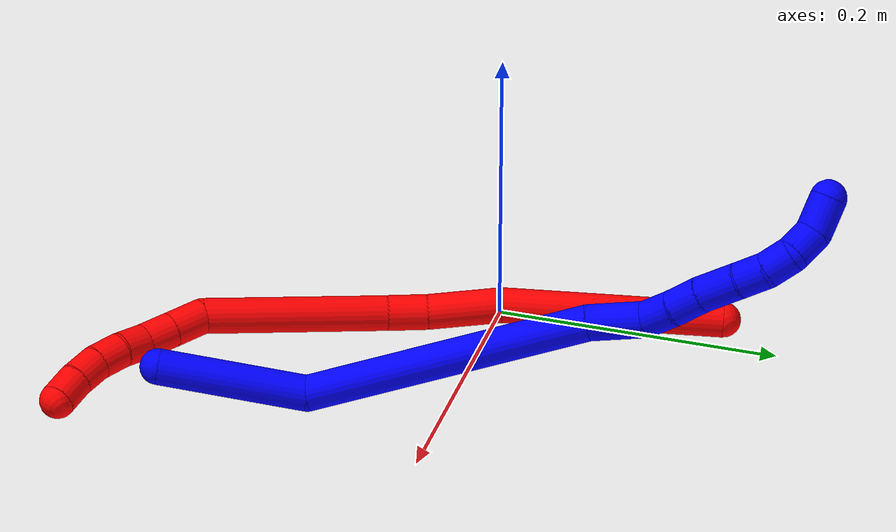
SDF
<sdf version="1.7">
 <world name="default">
  <plugin name="TubeGeneratorPlugin" filename="libtube_generator_plugin.so"/>
  <model name="photoneo_s_sensor">
   <static>1</static>
   <pose>0 0 2 1.57079 1.57079 3.14159</pose>
   <link name="link">
    <inertial><mass>0.1</mass></inertial>
    <sensor name="sensor" type="depth">
     <update_rate>30</update_rate>
     <camera>
      <horizontal_fov>1.22</horizontal_fov>
      <image><width>1920</width><height>1200</height><format>B8G8R8</format></image>
      <clip><near>0.1</near><far>4</far></clip>
      <depth_camera><output>points</output></depth_camera>
     </camera>
     <plugin name="camera_plugin" filename="libgazebo_ros_depth_camera.so">
      <baseline>0.2</baseline>
      <alwaysOn>1</alwaysOn>
      <updateRate>0.0</updateRate>
      <cameraName>camera_ir</cameraName>
      <imageTopicName>/camera/color/image_raw</imageTopicName>
      <cameraInfoTopicName>/camera/color/camera_info</cameraInfoTopicName>
      <depthImageTopicName>/camera/depth/image_raw</depthImageTopicName>
      <depthImageCameraInfoTopicName>/camera/depth/camera_info</depthImageCameraInfoTopicName>
      <pointCloudTopicName>/camera/depth/points</pointCloudTopicName>
      <frameName>fr_optical</frameName>
      <pointCloudCutoff>0.1</pointCloudCutoff>
      <pointCloudCutoffMax>2.0</pointCloudCutoffMax>
      <distortionK1>0</distortionK1>
      <distortionK2>0</distortionK2>
      <distortionK3>0</distortionK3>
      <distortionT1>0</distortionT1>
      <distortionT2>0</distortionT2>
      <CxPrime>0</CxPrime>
      <Cx>0</Cx>
      <Cy>0</Cy>
      <focalLength>0</focalLength>
      <hackBaseline>0</hackBaseline>
     </plugin>
    </sensor>
   </link>
  </model>
  <gravity>0 0 -9.8</gravity>
  <magnetic_field>6e-06 2.3e-05 -4.2e-05</magnetic_field>
  <atmosphere type="adiabatic"/>
  <physics name="default_physics" default="0" type="ode">
   <max_step_size>0.003</max_step_size>
   <real_time_factor>1</real_time_factor>
   <real_time_update_rate>1000</real_time_update_rate>
   <max_contacts>10000</max_contacts>
   <ode>
    <solver>
     <type>quick</type>
     <iters>100</iters>
     <sor>1.3</sor>
     <use_dynamic_moi_rescaling>0</use_dynamic_moi_rescaling>
    </solver>
    <constraints>
     <contact_max_correcting_vel>0</contact_max_correcting_vel>
     <contact_surface_layer>0.001</contact_surface_layer>
     <cfm>0</cfm>
     <erp>0.2</erp>
    </constraints>
   </ode>
  </physics>
  <scene><ambient>0.4 0.4 0.4 1</ambient><background>0.7 0.7 0.7 1</background><shadows>0</shadows></scene>
  <audio><device>default</device></audio>
  <spherical_coordinates>
   <surface_model>EARTH_WGS84</surface_model>
   <latitude_deg>0</latitude_deg>
   <longitude_deg>0</longitude_deg>
   <elevation>0</elevation>
   <heading_deg>0</heading_deg>
  </spherical_coordinates>
  <model name="bin">
   <static>1</static>
   <link name="bottom">
    <collision name="collision-bottom">
     <pose>0 0 -0.01 0 -0 0</pose>
     <geometry><box><size>0.8 0.6 0.02</size></box></geometry>
     <surface>
      <friction><ode><mu>100</mu><mu2>100</mu2></ode></friction>
      <contact><collide_bitmask>65535</collide_bitmask></contact>
     </surface>
    </collision>
   </link>
   <link name="west_wall">
    <collision name="collision-west_wall">
     <pose>-0.41 0 0.1 0 -0 0</pose>
     <geometry><box><size>0.02 0.6 0.2</size></box></geometry>
     <surface>
      <friction><ode><mu>100</mu><mu2>100</mu2></ode></friction>
      <contact><collide_bitmask>65535</collide_bitmask></contact>
     </surface>
    </collision>
   </link>
   <link name="east_wall">
    <collision name="collision-east_wall">
     <pose>0.41 0 0.1 0 -0 0</pose>
     <geometry><box><size>0.02 0.6 0.2</size></box></geometry>
     <surface>
      <friction><ode><mu>100</mu><mu2>100</mu2></ode></friction>
      <contact><collide_bitmask>65535</collide_bitmask></contact>
     </surface>
    </collision>
   </link>
   <link name="south_wall">
    <collision name="collision-south_wall">
     <pose>0 -0.31 0.1 0 -0 0</pose>
     <geometry><box><size>0.8 0.02 0.2</size></box></geometry>
     <surface>
      <friction><ode><mu>100</mu><mu2>100</mu2></ode></friction>
      <contact><collide_bitmask>65535</collide_bitmask></contact>
     </surface>
    </collision>
   </link>
   <link name="north_wall">
    <collision name="collision-north_wall">
     <pose>0 0.31 0.1 0 -0 0</pose>
     <geometry><box><size>0.8 0.02 0.2</size></box></geometry>
     <surface>
      <friction><ode><mu>100</mu><mu2>100</mu2></ode></friction>
      <contact><collide_bitmask>65535</collide_bitmask></contact>
     </surface>
    </collision>
   </link>
  </model>
  <model name="1">
   <static>0</static>
   <link name="1">
    <collision name="collision-cylinder-e_1_1_4">
     <pose>-0.004828 0.044765 -0.025045 -2.08088 -0.09385 0.159823</pose>
     <geometry><cylinder><radius>0.0125</radius><length>0.103044</length></cylinder></geometry>
     <surface>
      <friction><ode><mu>1.16</mu><mu2>1.16</mu2><slip1>0</slip1><slip2>0</slip2></ode></friction>
      <contact><ode><kp>1e+06</kp><kd>1</kd><max_vel>0</max_vel><min_depth>0.001</min_depth></ode></contact>
     </surface>
    </collision>
    <visual name="visual-cylinder-e_1_1_4">
     <pose>-0.004828 0.044765 -0.025045 -2.08088 -0.09385 0.159823</pose>
     <geometry><cylinder><radius>0.0125</radius><length>0.103044</length></cylinder></geometry>
     <material><ambient>0 0 1 1</ambient></material>
    </visual>
    <collision name="collision-cylinder-e_2_4_5">
     <pose>-0.063218 0.161538 -0.09321 -2.11035 -0.568013 0.951193</pose>
     <geometry><cylinder><radius>0.0125</radius><length>0.19913</length></cylinder></geometry>
     <surface>
      <friction><ode><mu>1.16</mu><mu2>1.16</mu2><slip1>0</slip1><slip2>0</slip2></ode></friction>
      <contact><ode><kp>1e+06</kp><kd>1</kd><max_vel>0</max_vel><min_depth>0.001</min_depth></ode></contact>
     </surface>
    </collision>
    <visual name="visual-cylinder-e_2_4_5">
     <pose>-0.063218 0.161538 -0.09321 -2.11035 -0.568013 0.951193</pose>
     <geometry><cylinder><radius>0.0125</radius><length>0.19913</length></cylinder></geometry>
     <material><ambient>0 0 1 1</ambient></material>
    </visual>
    <collision name="collision-cylinder-e_3_5_6">
     <pose>-0.124976 0.249985 -0.14276 -1.94367 -0.434636 0.625696</pose>
     <geometry><cylinder><radius>0.0125</radius><length>0.038925</length></cylinder></geometry>
     <surface>
      <friction><ode><mu>1.16</mu><mu2>1.16</mu2><slip1>0</slip1><slip2>0</slip2></ode></friction>
      <contact><ode><kp>1e+06</kp><kd>1</kd><max_vel>0</max_vel><min_depth>0.001</min_depth></ode></contact>
     </surface>
    </collision>
    <visual name="visual-cylinder-e_3_5_6">
     <pose>-0.124976 0.249985 -0.14276 -1.94367 -0.434636 0.625696</pose>
     <geometry><cylinder><radius>0.0125</radius><length>0.038925</length></cylinder></geometry>
     <material><ambient>0 0 1 1</ambient></material>
    </visual>
    <collision name="collision-cylinder-e_4_6_7">
     <pose>-0.141386 0.273877 -0.150658 -1.76511 -0.824639 0.977619</pose>
     <geometry><cylinder><radius>0.0125</radius><length>0.022376</length></cylinder></geometry>
     <surface>
      <friction><ode><mu>1.16</mu><mu2>1.16</mu2><slip1>0</slip1><slip2>0</slip2></ode></friction>
      <contact><ode><kp>1e+06</kp><kd>1</kd><max_vel>0</max_vel><min_depth>0.001</min_depth></ode></contact>
     </surface>
    </collision>
    <visual name="visual-cylinder-e_4_6_7">
     <pose>-0.141386 0.273877 -0.150658 -1.76511 -0.824639 0.977619</pose>
     <geometry><cylinder><radius>0.0125</radius><length>0.022376</length></cylinder></geometry>
     <material><ambient>0 0 1 1</ambient></material>
    </visual>
    <collision name="collision-cylinder-e_5_7_8">
     <pose>-0.158127 0.288229 -0.154554 -1.90936 -0.861588 1.15145</pose>
     <geometry><cylinder><radius>0.0125</radius><length>0.022466</length></cylinder></geometry>
     <surface>
      <friction><ode><mu>1.16</mu><mu2>1.16</mu2><slip1>0</slip1><slip2>0</slip2></ode></friction>
      <contact><ode><kp>1e+06</kp><kd>1</kd><max_vel>0</max_vel><min_depth>0.001</min_depth></ode></contact>
     </surface>
    </collision>
    <visual name="visual-cylinder-e_5_7_8">
     <pose>-0.158127 0.288229 -0.154554 -1.90936 -0.861588 1.15145</pose>
     <geometry><cylinder><radius>0.0125</radius><length>0.022466</length></cylinder></geometry>
     <material><ambient>0 0 1 1</ambient></material>
    </visual>
    <collision name="collision-cylinder-e_6_8_9">
     <pose>-0.176571 0.304849 -0.159758 -1.84883 -0.776005 0.992904</pose>
     <geometry><cylinder><radius>0.0125</radius><length>0.028325</length></cylinder></geometry>
     <surface>
      <friction><ode><mu>1.16</mu><mu2>1.16</mu2><slip1>0</slip1><slip2>0</slip2></ode></friction>
      <contact><ode><kp>1e+06</kp><kd>1</kd><max_vel>0</max_vel><min_depth>0.001</min_depth></ode></contact>
     </surface>
    </collision>
    <visual name="visual-cylinder-e_6_8_9">
     <pose>-0.176571 0.304849 -0.159758 -1.84883 -0.776005 0.992904</pose>
     <geometry><cylinder><radius>0.0125</radius><length>0.028325</length></cylinder></geometry>
     <material><ambient>0 0 1 1</ambient></material>
    </visual>
    <collision name="collision-cylinder-e_7_9_10">
     <pose>-0.193282 0.321353 -0.165545 -1.98875 -0.740953 1.07715</pose>
     <geometry><cylinder><radius>0.0125</radius><length>0.020124</length></cylinder></geometry>
     <surface>
      <friction><ode><mu>1.16</mu><mu2>1.16</mu2><slip1>0</slip1><slip2>0</slip2></ode></friction>
      <contact><ode><kp>1e+06</kp><kd>1</kd><max_vel>0</max_vel><min_depth>0.001</min_depth></ode></contact>
     </surface>
    </collision>
    <visual name="visual-cylinder-e_7_9_10">
     <pose>-0.193282 0.321353 -0.165545 -1.98875 -0.740953 1.07715</pose>
     <geometry><cylinder><radius>0.0125</radius><length>0.020124</length></cylinder></geometry>
     <material><ambient>0 0 1 1</ambient></material>
    </visual>
    <collision name="collision-cylinder-e_8_10_11">
     <pose>-0.207741 0.333152 -0.172713 -2.26272 -0.866695 1.5549</pose>
     <geometry><cylinder><radius>0.0125</radius><length>0.020118</length></cylinder></geometry>
     <surface>
      <friction><ode><mu>1.16</mu><mu2>1.16</mu2><slip1>0</slip1><slip2>0</slip2></ode></friction>
      <contact><ode><kp>1e+06</kp><kd>1</kd><max_vel>0</max_vel><min_depth>0.001</min_depth></ode></contact>
     </surface>
    </collision>
    <visual name="visual-cylinder-e_8_10_11">
     <pose>-0.207741 0.333152 -0.172713 -2.26272 -0.866695 1.5549</pose>
     <geometry><cylinder><radius>0.0125</radius><length>0.020118</length></cylinder></geometry>
     <material><ambient>0 0 1 1</ambient></material>
    </visual>
    <collision name="collision-cylinder-e_9_11_12">
     <pose>-0.221915 0.339899 -0.18449 -2.9181 -0.694236 2.54004</pose>
     <geometry><cylinder><radius>0.0125</radius><length>0.020341</length></cylinder></geometry>
     <surface>
      <friction><ode><mu>1.16</mu><mu2>1.16</mu2><slip1>0</slip1><slip2>0</slip2></ode></friction>
      <contact><ode><kp>1e+06</kp><kd>1</kd><max_vel>0</max_vel><min_depth>0.001</min_depth></ode></contact>
     </surface>
    </collision>
    <visual name="visual-cylinder-e_9_11_12">
     <pose>-0.221915 0.339899 -0.18449 -2.9181 -0.694236 2.54004</pose>
     <geometry><cylinder><radius>0.0125</radius><length>0.020341</length></cylinder></geometry>
     <material><ambient>0 0 1 1</ambient></material>
    </visual>
    <collision name="collision-cylinder-e_10_12_2">
     <pose>-0.239054 0.340181 -0.198669 2.92389 -1.00749 -2.75013</pose>
     <geometry><cylinder><radius>0.0125</radius><length>0.025151</length></cylinder></geometry>
     <surface>
      <friction><ode><mu>1.16</mu><mu2>1.16</mu2><slip1>0</slip1><slip2>0</slip2></ode></friction>
      <contact><ode><kp>1e+06</kp><kd>1</kd><max_vel>0</max_vel><min_depth>0.001</min_depth></ode></contact>
     </surface>
    </collision>
    <visual name="visual-cylinder-e_10_12_2">
     <pose>-0.239054 0.340181 -0.198669 2.92389 -1.00749 -2.75013</pose>
     <geometry><cylinder><radius>0.0125</radius><length>0.025151</length></cylinder></geometry>
     <material><ambient>0 0 1 1</ambient></material>
    </visual>
    <collision name="collision-sphere-2">
     <pose>-0.249687 0.338731 -0.205225 0 -0 0</pose>
     <geometry><sphere><radius>0.0125</radius></sphere></geometry>
     <surface>
      <friction><ode><mu>1.16</mu><mu2>1.16</mu2><slip1>0</slip1><slip2>0</slip2></ode></friction>
      <contact><ode><kp>1e+06</kp><kd>1</kd><max_vel>0</max_vel><min_depth>0.001</min_depth></ode></contact>
     </surface>
    </collision>
    <visual name="visual-sphere-2">
     <pose>-0.249687 0.338731 -0.205225 0 -0 0</pose>
     <geometry><sphere><radius>0.0125</radius></sphere></geometry>
     <material><ambient>0 0 1 1</ambient></material>
    </visual>
    <collision name="collision-sphere-12">
     <pose>-0.228422 0.341631 -0.192112 0 -0 0</pose>
     <geometry><sphere><radius>0.0125</radius></sphere></geometry>
     <surface>
      <friction><ode><mu>1.16</mu><mu2>1.16</mu2><slip1>0</slip1><slip2>0</slip2></ode></friction>
      <contact><ode><kp>1e+06</kp><kd>1</kd><max_vel>0</max_vel><min_depth>0.001</min_depth></ode></contact>
     </surface>
    </collision>
    <visual name="visual-sphere-12">
     <pose>-0.228422 0.341631 -0.192112 0 -0 0</pose>
     <geometry><sphere><radius>0.0125</radius></sphere></geometry>
     <material><ambient>0 0 1 1</ambient></material>
    </visual>
    <collision name="collision-sphere-11">
     <pose>-0.215408 0.338166 -0.176868 0 -0 0</pose>
     <geometry><sphere><radius>0.0125</radius></sphere></geometry>
     <surface>
      <friction><ode><mu>1.16</mu><mu2>1.16</mu2><slip1>0</slip1><slip2>0</slip2></ode></friction>
      <contact><ode><kp>1e+06</kp><kd>1</kd><max_vel>0</max_vel><min_depth>0.001</min_depth></ode></contact>
     </surface>
    </collision>
    <visual name="visual-sphere-11">
     <pose>-0.215408 0.338166 -0.176868 0 -0 0</pose>
     <geometry><sphere><radius>0.0125</radius></sphere></geometry>
     <material><ambient>0 0 1 1</ambient></material>
    </visual>
    <collision name="collision-sphere-10">
     <pose>-0.200074 0.328138 -0.168559 0 -0 0</pose>
     <geometry><sphere><radius>0.0125</radius></sphere></geometry>
     <surface>
      <friction><ode><mu>1.16</mu><mu2>1.16</mu2><slip1>0</slip1><slip2>0</slip2></ode></friction>
      <contact><ode><kp>1e+06</kp><kd>1</kd><max_vel>0</max_vel><min_depth>0.001</min_depth></ode></contact>
     </surface>
    </collision>
    <visual name="visual-sphere-10">
     <pose>-0.200074 0.328138 -0.168559 0 -0 0</pose>
     <geometry><sphere><radius>0.0125</radius></sphere></geometry>
     <material><ambient>0 0 1 1</ambient></material>
    </visual>
    <collision name="collision-sphere-9">
     <pose>-0.186491 0.314569 -0.162532 0 -0 0</pose>
     <geometry><sphere><radius>0.0125</radius></sphere></geometry>
     <surface>
      <friction><ode><mu>1.16</mu><mu2>1.16</mu2><slip1>0</slip1><slip2>0</slip2></ode></friction>
      <contact><ode><kp>1e+06</kp><kd>1</kd><max_vel>0</max_vel><min_depth>0.001</min_depth></ode></contact>
     </surface>
    </collision>
    <visual name="visual-sphere-9">
     <pose>-0.186491 0.314569 -0.162532 0 -0 0</pose>
     <geometry><sphere><radius>0.0125</radius></sphere></geometry>
     <material><ambient>0 0 1 1</ambient></material>
    </visual>
    <collision name="collision-sphere-4">
     <pose>-0.009656 0.089531 -0.05009 0 -0 0</pose>
     <geometry><sphere><radius>0.0125</radius></sphere></geometry>
     <surface>
      <friction><ode><mu>1.16</mu><mu2>1.16</mu2><slip1>0</slip1><slip2>0</slip2></ode></friction>
      <contact><ode><kp>1e+06</kp><kd>1</kd><max_vel>0</max_vel><min_depth>0.001</min_depth></ode></contact>
     </surface>
    </collision>
    <visual name="visual-sphere-4">
     <pose>-0.009656 0.089531 -0.05009 0 -0 0</pose>
     <geometry><sphere><radius>0.0125</radius></sphere></geometry>
     <material><ambient>0 0 1 1</ambient></material>
    </visual>
    <collision name="collision-sphere-1">
     <geometry><sphere><radius>0.0125</radius></sphere></geometry>
     <surface>
      <friction><ode><mu>1.16</mu><mu2>1.16</mu2><slip1>0</slip1><slip2>0</slip2></ode></friction>
      <contact><ode><kp>1e+06</kp><kd>1</kd><max_vel>0</max_vel><min_depth>0.001</min_depth></ode></contact>
     </surface>
    </collision>
    <visual name="visual-sphere-1">
     <geometry><sphere><radius>0.0125</radius></sphere></geometry>
     <material><ambient>0 0 1 1</ambient></material>
    </visual>
    <collision name="collision-sphere-8">
     <pose>-0.166651 0.295129 -0.156984 0 -0 0</pose>
     <geometry><sphere><radius>0.0125</radius></sphere></geometry>
     <surface>
      <friction><ode><mu>1.16</mu><mu2>1.16</mu2><slip1>0</slip1><slip2>0</slip2></ode></friction>
      <contact><ode><kp>1e+06</kp><kd>1</kd><max_vel>0</max_vel><min_depth>0.001</min_depth></ode></contact>
     </surface>
    </collision>
    <visual name="visual-sphere-8">
     <pose>-0.166651 0.295129 -0.156984 0 -0 0</pose>
     <geometry><sphere><radius>0.0125</radius></sphere></geometry>
     <material><ambient>0 0 1 1</ambient></material>
    </visual>
    <collision name="collision-sphere-5">
     <pose>-0.11678 0.233545 -0.136329 0 -0 0</pose>
     <geometry><sphere><radius>0.0125</radius></sphere></geometry>
     <surface>
      <friction><ode><mu>1.16</mu><mu2>1.16</mu2><slip1>0</slip1><slip2>0</slip2></ode></friction>
      <contact><ode><kp>1e+06</kp><kd>1</kd><max_vel>0</max_vel><min_depth>0.001</min_depth></ode></contact>
     </surface>
    </collision>
    <visual name="visual-sphere-5">
     <pose>-0.11678 0.233545 -0.136329 0 -0 0</pose>
     <geometry><sphere><radius>0.0125</radius></sphere></geometry>
     <material><ambient>0 0 1 1</ambient></material>
    </visual>
    <collision name="collision-sphere-6">
     <pose>-0.133171 0.266425 -0.149191 0 -0 0</pose>
     <geometry><sphere><radius>0.0125</radius></sphere></geometry>
     <surface>
      <friction><ode><mu>1.16</mu><mu2>1.16</mu2><slip1>0</slip1><slip2>0</slip2></ode></friction>
      <contact><ode><kp>1e+06</kp><kd>1</kd><max_vel>0</max_vel><min_depth>0.001</min_depth></ode></contact>
     </surface>
    </collision>
    <visual name="visual-sphere-6">
     <pose>-0.133171 0.266425 -0.149191 0 -0 0</pose>
     <geometry><sphere><radius>0.0125</radius></sphere></geometry>
     <material><ambient>0 0 1 1</ambient></material>
    </visual>
    <collision name="collision-sphere-7">
     <pose>-0.149602 0.281329 -0.152124 0 -0 0</pose>
     <geometry><sphere><radius>0.0125</radius></sphere></geometry>
     <surface>
      <friction><ode><mu>1.16</mu><mu2>1.16</mu2><slip1>0</slip1><slip2>0</slip2></ode></friction>
      <contact><ode><kp>1e+06</kp><kd>1</kd><max_vel>0</max_vel><min_depth>0.001</min_depth></ode></contact>
     </surface>
    </collision>
    <visual name="visual-sphere-7">
     <pose>-0.149602 0.281329 -0.152124 0 -0 0</pose>
     <geometry><sphere><radius>0.0125</radius></sphere></geometry>
     <material><ambient>0 0 1 1</ambient></material>
    </visual>
    <inertial>
     <pose>-0.096527 0.192776 -0.107245 0 -0 0</pose>
     <mass>0.5</mass>
     <inertia>
      <ixx>0.000887</ixx>
      <ixy>0</ixy>
      <ixz>0</ixz>
      <iyy>0.000522</iyy>
      <iyz>0</iyz>
      <izz>-0.000212</izz>
     </inertia>
    </inertial>
   </link>
   <pose>0.181434 -0.189535 0.029448 -0.951472 1.30522 -1.22764</pose>
  </model>
  <model name="2">
   <static>0</static>
   <link name="2">
    <collision name="collision-cylinder-e_1_1_4">
     <pose>0.034513 -0.054503 -0.043662 2.2462 0.459001 0.905547</pose>
     <geometry><cylinder><radius>0.0125</radius><length>0.155797</length></cylinder></geometry>
     <surface>
      <friction><ode><mu>1.16</mu><mu2>1.16</mu2><slip1>0</slip1><slip2>0</slip2></ode></friction>
      <contact><ode><kp>1e+06</kp><kd>1</kd><max_vel>0</max_vel><min_depth>0.001</min_depth></ode></contact>
     </surface>
    </collision>
    <visual name="visual-cylinder-e_1_1_4">
     <pose>0.034513 -0.054503 -0.043662 2.2462 0.459001 0.905547</pose>
     <geometry><cylinder><radius>0.0125</radius><length>0.155797</length></cylinder></geometry>
     <material><ambient>1 0 0 1</ambient></material>
    </visual>
    <collision name="collision-cylinder-e_2_4_5">
     <pose>0.083401 -0.1274 -0.098868 2.13128 0.584756 0.996908</pose>
     <geometry><cylinder><radius>0.0125</radius><length>0.052085</length></cylinder></geometry>
     <surface>
      <friction><ode><mu>1.16</mu><mu2>1.16</mu2><slip1>0</slip1><slip2>0</slip2></ode></friction>
      <contact><ode><kp>1e+06</kp><kd>1</kd><max_vel>0</max_vel><min_depth>0.001</min_depth></ode></contact>
     </surface>
    </collision>
    <visual name="visual-cylinder-e_2_4_5">
     <pose>0.083401 -0.1274 -0.098868 2.13128 0.584756 0.996908</pose>
     <geometry><cylinder><radius>0.0125</radius><length>0.052085</length></cylinder></geometry>
     <material><ambient>1 0 0 1</ambient></material>
    </visual>
    <collision name="collision-cylinder-e_3_5_6">
     <pose>0.104517 -0.156925 -0.11668 2.08364 0.485468 0.801377</pose>
     <geometry><cylinder><radius>0.0125</radius><length>0.02889</length></cylinder></geometry>
     <surface>
      <friction><ode><mu>1.16</mu><mu2>1.16</mu2><slip1>0</slip1><slip2>0</slip2></ode></friction>
      <contact><ode><kp>1e+06</kp><kd>1</kd><max_vel>0</max_vel><min_depth>0.001</min_depth></ode></contact>
     </surface>
    </collision>
    <visual name="visual-cylinder-e_3_5_6">
     <pose>0.104517 -0.156925 -0.11668 2.08364 0.485468 0.801377</pose>
     <geometry><cylinder><radius>0.0125</radius><length>0.02889</length></cylinder></geometry>
     <material><ambient>1 0 0 1</ambient></material>
    </visual>
    <collision name="collision-cylinder-e_4_6_7">
     <pose>0.137139 -0.223038 -0.146324 1.9728 0.408799 0.607377</pose>
     <geometry><cylinder><radius>0.0125</radius><length>0.130217</length></cylinder></geometry>
     <surface>
      <friction><ode><mu>1.16</mu><mu2>1.16</mu2><slip1>0</slip1><slip2>0</slip2></ode></friction>
      <contact><ode><kp>1e+06</kp><kd>1</kd><max_vel>0</max_vel><min_depth>0.001</min_depth></ode></contact>
     </surface>
    </collision>
    <visual name="visual-cylinder-e_4_6_7">
     <pose>0.137139 -0.223038 -0.146324 1.9728 0.408799 0.607377</pose>
     <geometry><cylinder><radius>0.0125</radius><length>0.130217</length></cylinder></geometry>
     <material><ambient>1 0 0 1</ambient></material>
    </visual>
    <collision name="collision-cylinder-e_5_7_8">
     <pose>0.169391 -0.289202 -0.168463 1.4607 0.515282 0.463472</pose>
     <geometry><cylinder><radius>0.0125</radius><length>0.025858</length></cylinder></geometry>
     <surface>
      <friction><ode><mu>1.16</mu><mu2>1.16</mu2><slip1>0</slip1><slip2>0</slip2></ode></friction>
      <contact><ode><kp>1e+06</kp><kd>1</kd><max_vel>0</max_vel><min_depth>0.001</min_depth></ode></contact>
     </surface>
    </collision>
    <visual name="visual-cylinder-e_5_7_8">
     <pose>0.169391 -0.289202 -0.168463 1.4607 0.515282 0.463472</pose>
     <geometry><cylinder><radius>0.0125</radius><length>0.025858</length></cylinder></geometry>
     <material><ambient>1 0 0 1</ambient></material>
    </visual>
    <collision name="collision-cylinder-e_6_8_9">
     <pose>0.181214 -0.310008 -0.166245 1.4691 0.513169 0.465332</pose>
     <geometry><cylinder><radius>0.0125</radius><length>0.022209</length></cylinder></geometry>
     <surface>
      <friction><ode><mu>1.16</mu><mu2>1.16</mu2><slip1>0</slip1><slip2>0</slip2></ode></friction>
      <contact><ode><kp>1e+06</kp><kd>1</kd><max_vel>0</max_vel><min_depth>0.001</min_depth></ode></contact>
     </surface>
    </collision>
    <visual name="visual-cylinder-e_6_8_9">
     <pose>0.181214 -0.310008 -0.166245 1.4691 0.513169 0.465332</pose>
     <geometry><cylinder><radius>0.0125</radius><length>0.022209</length></cylinder></geometry>
     <material><ambient>1 0 0 1</ambient></material>
    </visual>
    <collision name="collision-cylinder-e_7_9_10">
     <pose>0.189696 -0.329535 -0.163169 1.36243 0.290899 0.236393</pose>
     <geometry><cylinder><radius>0.0125</radius><length>0.021131</length></cylinder></geometry>
     <surface>
      <friction><ode><mu>1.16</mu><mu2>1.16</mu2><slip1>0</slip1><slip2>0</slip2></ode></friction>
      <contact><ode><kp>1e+06</kp><kd>1</kd><max_vel>0</max_vel><min_depth>0.001</min_depth></ode></contact>
     </surface>
    </collision>
    <visual name="visual-cylinder-e_7_9_10">
     <pose>0.189696 -0.329535 -0.163169 1.36243 0.290899 0.236393</pose>
     <geometry><cylinder><radius>0.0125</radius><length>0.021131</length></cylinder></geometry>
     <material><ambient>1 0 0 1</ambient></material>
    </visual>
    <collision name="collision-cylinder-e_8_10_11">
     <pose>0.197306 -0.348511 -0.158837 1.329 0.455706 0.359363</pose>
     <geometry><cylinder><radius>0.0125</radius><length>0.020814</length></cylinder></geometry>
     <surface>
      <friction><ode><mu>1.16</mu><mu2>1.16</mu2><slip1>0</slip1><slip2>0</slip2></ode></friction>
      <contact><ode><kp>1e+06</kp><kd>1</kd><max_vel>0</max_vel><min_depth>0.001</min_depth></ode></contact>
     </surface>
    </collision>
    <visual name="visual-cylinder-e_8_10_11">
     <pose>0.197306 -0.348511 -0.158837 1.329 0.455706 0.359363</pose>
     <geometry><cylinder><radius>0.0125</radius><length>0.020814</length></cylinder></geometry>
     <material><ambient>1 0 0 1</ambient></material>
    </visual>
    <collision name="collision-cylinder-e_9_11_12">
     <pose>0.206639 -0.366113 -0.152295 1.10337 0.461574 0.287228</pose>
     <geometry><cylinder><radius>0.0125</radius><length>0.021341</length></cylinder></geometry>
     <surface>
      <friction><ode><mu>1.16</mu><mu2>1.16</mu2><slip1>0</slip1><slip2>0</slip2></ode></friction>
      <contact><ode><kp>1e+06</kp><kd>1</kd><max_vel>0</max_vel><min_depth>0.001</min_depth></ode></contact>
     </surface>
    </collision>
    <visual name="visual-cylinder-e_9_11_12">
     <pose>0.206639 -0.366113 -0.152295 1.10337 0.461574 0.287228</pose>
     <geometry><cylinder><radius>0.0125</radius><length>0.021341</length></cylinder></geometry>
     <material><ambient>1 0 0 1</ambient></material>
    </visual>
    <collision name="collision-cylinder-e_10_12_2">
     <pose>0.216532 -0.382482 -0.142571 0.965942 0.494714 0.263316</pose>
     <geometry><cylinder><radius>0.0125</radius><length>0.021658</length></cylinder></geometry>
     <surface>
      <friction><ode><mu>1.16</mu><mu2>1.16</mu2><slip1>0</slip1><slip2>0</slip2></ode></friction>
      <contact><ode><kp>1e+06</kp><kd>1</kd><max_vel>0</max_vel><min_depth>0.001</min_depth></ode></contact>
     </surface>
    </collision>
    <visual name="visual-cylinder-e_10_12_2">
     <pose>0.216532 -0.382482 -0.142571 0.965942 0.494714 0.263316</pose>
     <geometry><cylinder><radius>0.0125</radius><length>0.021658</length></cylinder></geometry>
     <material><ambient>1 0 0 1</ambient></material>
    </visual>
    <collision name="collision-sphere-2">
     <pose>0.221673 -0.390321 -0.137151 0 -0 0</pose>
     <geometry><sphere><radius>0.0125</radius></sphere></geometry>
     <surface>
      <friction><ode><mu>1.16</mu><mu2>1.16</mu2><slip1>0</slip1><slip2>0</slip2></ode></friction>
      <contact><ode><kp>1e+06</kp><kd>1</kd><max_vel>0</max_vel><min_depth>0.001</min_depth></ode></contact>
     </surface>
    </collision>
    <visual name="visual-sphere-2">
     <pose>0.221673 -0.390321 -0.137151 0 -0 0</pose>
     <geometry><sphere><radius>0.0125</radius></sphere></geometry>
     <material><ambient>1 0 0 1</ambient></material>
    </visual>
    <collision name="collision-sphere-12">
     <pose>0.211391 -0.374642 -0.14799 0 -0 0</pose>
     <geometry><sphere><radius>0.0125</radius></sphere></geometry>
     <surface>
      <friction><ode><mu>1.16</mu><mu2>1.16</mu2><slip1>0</slip1><slip2>0</slip2></ode></friction>
      <contact><ode><kp>1e+06</kp><kd>1</kd><max_vel>0</max_vel><min_depth>0.001</min_depth></ode></contact>
     </surface>
    </collision>
    <visual name="visual-sphere-12">
     <pose>0.211391 -0.374642 -0.14799 0 -0 0</pose>
     <geometry><sphere><radius>0.0125</radius></sphere></geometry>
     <material><ambient>1 0 0 1</ambient></material>
    </visual>
    <collision name="collision-sphere-11">
     <pose>0.201886 -0.357584 -0.1566 0 -0 0</pose>
     <geometry><sphere><radius>0.0125</radius></sphere></geometry>
     <surface>
      <friction><ode><mu>1.16</mu><mu2>1.16</mu2><slip1>0</slip1><slip2>0</slip2></ode></friction>
      <contact><ode><kp>1e+06</kp><kd>1</kd><max_vel>0</max_vel><min_depth>0.001</min_depth></ode></contact>
     </surface>
    </collision>
    <visual name="visual-sphere-11">
     <pose>0.201886 -0.357584 -0.1566 0 -0 0</pose>
     <geometry><sphere><radius>0.0125</radius></sphere></geometry>
     <material><ambient>1 0 0 1</ambient></material>
    </visual>
    <collision name="collision-sphere-10">
     <pose>0.192726 -0.339438 -0.161075 0 -0 0</pose>
     <geometry><sphere><radius>0.0125</radius></sphere></geometry>
     <surface>
      <friction><ode><mu>1.16</mu><mu2>1.16</mu2><slip1>0</slip1><slip2>0</slip2></ode></friction>
      <contact><ode><kp>1e+06</kp><kd>1</kd><max_vel>0</max_vel><min_depth>0.001</min_depth></ode></contact>
     </surface>
    </collision>
    <visual name="visual-sphere-10">
     <pose>0.192726 -0.339438 -0.161075 0 -0 0</pose>
     <geometry><sphere><radius>0.0125</radius></sphere></geometry>
     <material><ambient>1 0 0 1</ambient></material>
    </visual>
    <collision name="collision-sphere-9">
     <pose>0.186666 -0.319632 -0.165263 0 -0 0</pose>
     <geometry><sphere><radius>0.0125</radius></sphere></geometry>
     <surface>
      <friction><ode><mu>1.16</mu><mu2>1.16</mu2><slip1>0</slip1><slip2>0</slip2></ode></friction>
      <contact><ode><kp>1e+06</kp><kd>1</kd><max_vel>0</max_vel><min_depth>0.001</min_depth></ode></contact>
     </surface>
    </collision>
    <visual name="visual-sphere-9">
     <pose>0.186666 -0.319632 -0.165263 0 -0 0</pose>
     <geometry><sphere><radius>0.0125</radius></sphere></geometry>
     <material><ambient>1 0 0 1</ambient></material>
    </visual>
    <collision name="collision-sphere-4">
     <pose>0.069026 -0.109007 -0.087324 0 -0 0</pose>
     <geometry><sphere><radius>0.0125</radius></sphere></geometry>
     <surface>
      <friction><ode><mu>1.16</mu><mu2>1.16</mu2><slip1>0</slip1><slip2>0</slip2></ode></friction>
      <contact><ode><kp>1e+06</kp><kd>1</kd><max_vel>0</max_vel><min_depth>0.001</min_depth></ode></contact>
     </surface>
    </collision>
    <visual name="visual-sphere-4">
     <pose>0.069026 -0.109007 -0.087324 0 -0 0</pose>
     <geometry><sphere><radius>0.0125</radius></sphere></geometry>
     <material><ambient>1 0 0 1</ambient></material>
    </visual>
    <collision name="collision-sphere-1">
     <geometry><sphere><radius>0.0125</radius></sphere></geometry>
     <surface>
      <friction><ode><mu>1.16</mu><mu2>1.16</mu2><slip1>0</slip1><slip2>0</slip2></ode></friction>
      <contact><ode><kp>1e+06</kp><kd>1</kd><max_vel>0</max_vel><min_depth>0.001</min_depth></ode></contact>
     </surface>
    </collision>
    <visual name="visual-sphere-1">
     <geometry><sphere><radius>0.0125</radius></sphere></geometry>
     <material><ambient>1 0 0 1</ambient></material>
    </visual>
    <collision name="collision-sphere-8">
     <pose>0.175762 -0.300384 -0.167227 0 -0 0</pose>
     <geometry><sphere><radius>0.0125</radius></sphere></geometry>
     <surface>
      <friction><ode><mu>1.16</mu><mu2>1.16</mu2><slip1>0</slip1><slip2>0</slip2></ode></friction>
      <contact><ode><kp>1e+06</kp><kd>1</kd><max_vel>0</max_vel><min_depth>0.001</min_depth></ode></contact>
     </surface>
    </collision>
    <visual name="visual-sphere-8">
     <pose>0.175762 -0.300384 -0.167227 0 -0 0</pose>
     <geometry><sphere><radius>0.0125</radius></sphere></geometry>
     <material><ambient>1 0 0 1</ambient></material>
    </visual>
    <collision name="collision-sphere-5">
     <pose>0.097777 -0.145793 -0.110411 0 -0 0</pose>
     <geometry><sphere><radius>0.0125</radius></sphere></geometry>
     <surface>
      <friction><ode><mu>1.16</mu><mu2>1.16</mu2><slip1>0</slip1><slip2>0</slip2></ode></friction>
      <contact><ode><kp>1e+06</kp><kd>1</kd><max_vel>0</max_vel><min_depth>0.001</min_depth></ode></contact>
     </surface>
    </collision>
    <visual name="visual-sphere-5">
     <pose>0.097777 -0.145793 -0.110411 0 -0 0</pose>
     <geometry><sphere><radius>0.0125</radius></sphere></geometry>
     <material><ambient>1 0 0 1</ambient></material>
    </visual>
    <collision name="collision-sphere-6">
     <pose>0.111257 -0.168057 -0.122949 0 -0 0</pose>
     <geometry><sphere><radius>0.0125</radius></sphere></geometry>
     <surface>
      <friction><ode><mu>1.16</mu><mu2>1.16</mu2><slip1>0</slip1><slip2>0</slip2></ode></friction>
      <contact><ode><kp>1e+06</kp><kd>1</kd><max_vel>0</max_vel><min_depth>0.001</min_depth></ode></contact>
     </surface>
    </collision>
    <visual name="visual-sphere-6">
     <pose>0.111257 -0.168057 -0.122949 0 -0 0</pose>
     <geometry><sphere><radius>0.0125</radius></sphere></geometry>
     <material><ambient>1 0 0 1</ambient></material>
    </visual>
    <collision name="collision-sphere-7">
     <pose>0.16302 -0.278019 -0.169699 0 -0 0</pose>
     <geometry><sphere><radius>0.0125</radius></sphere></geometry>
     <surface>
      <friction><ode><mu>1.16</mu><mu2>1.16</mu2><slip1>0</slip1><slip2>0</slip2></ode></friction>
      <contact><ode><kp>1e+06</kp><kd>1</kd><max_vel>0</max_vel><min_depth>0.001</min_depth></ode></contact>
     </surface>
    </collision>
    <visual name="visual-sphere-7">
     <pose>0.16302 -0.278019 -0.169699 0 -0 0</pose>
     <geometry><sphere><radius>0.0125</radius></sphere></geometry>
     <material><ambient>1 0 0 1</ambient></material>
    </visual>
    <inertial>
     <pose>0.112435 -0.186763 -0.111034 0 -0 0</pose>
     <mass>0.5</mass>
     <inertia>
      <ixx>0.000695</ixx>
      <ixy>0</ixy>
      <ixz>0</ixz>
      <iyy>0.000258</iyy>
      <iyz>0</iyz>
      <izz>0.000164</izz>
     </inertia>
    </inertial>
   </link>
   <pose>-0.016765 0.157833 0.012376 -2.05165 1.07521 -1.1777</pose>
  </model>
 </world>
</sdf>
